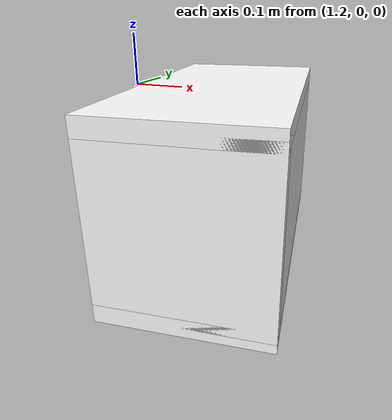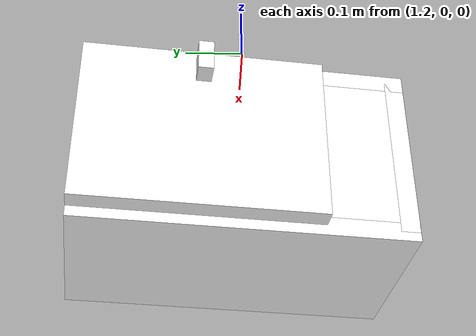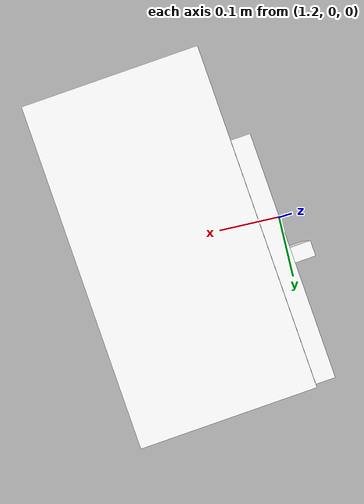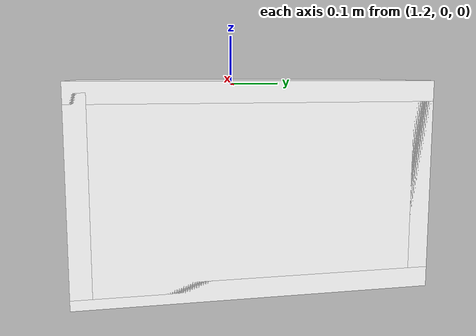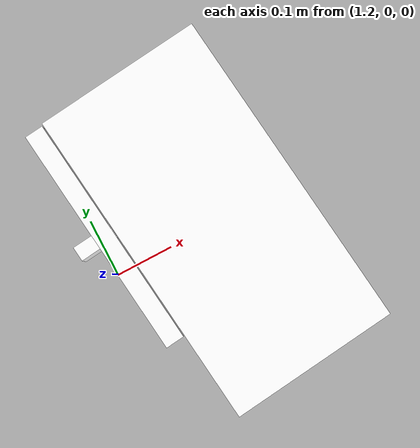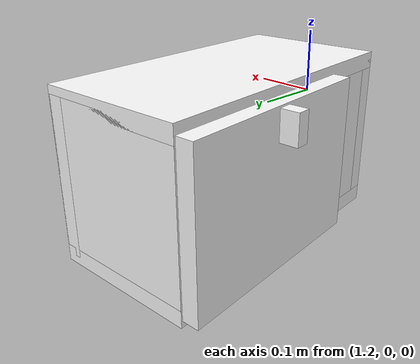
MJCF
<mujoco model="cabinet">
    <compiler angle="radian" eulerseq='zxy' />
    <option gravity = "0 0 0" />
    <option>
        <flag contact = "disable"/>
    </option>
    <statistic	extent="1.0" center="0.0 0.0 0.0"/>
    <visual>
        <map fogstart="3" fogend="5" force="0.1" znear=" 0.100000 " zfar=" 12.000000 "/>
    </visual>
    <size njmax="500" nconmax="100" />
    <actuator>
        <velocity joint="bottom_left_hinge" name="viva_revolution" kv='10'></velocity>
    </actuator>
    <asset>
        <texture builtin="flat" name="tabletex" height="32" width="32" rgb1="1 1 1" type="cube"></texture>
        <texture builtin="flat" name="objtex" height="32" width="32" rgb1="1 1 1" type="cube"></texture>
        <texture builtin="flat" name="handletex" height="32" width="32" rgb1="1 1 1" type="cube"></texture>
        <texture builtin="flat" name="wallpaper" height="32" width="32" rgb1="1 1 1" type="cube"></texture>
        <texture builtin="flat" name="kp" height="32" width="32" rgb1="1 1 1" type="cube"></texture>
        <material name="geomTable" shininess="0.03" specular="0.75" texture="tabletex"></material>
        <material name="geomObj" shininess="0.03" specular="0.75" texture="objtex"></material>
        <material name="geomHandle" shininess="0.03" specular="0.75" texture="handletex"></material>
        <material name="bg" shininess="0.03" specular="0.75" texture="wallpaper"></material>
        <material name="geomKeypad" shininess="0.03" specular="0.75" texture="kp"></material>
    </asset>
    <worldbody>
        <body name="cabinet_bottom" pos= " 1.386710 0.007954 -0.323120 "  quat= " -0.055568 0.000000 0.000000 0.998455" >
            <inertial pos="0 0 0" mass="1" diaginertia="1 1 1" />
            <geom size= " 0.151172 0.293720 0.016950 "  type="box" material="geomObj" name="b"/>
            <body name="cabinet_left" pos= " 0.000000 -0.276770 0.157974 " >
                <inertial pos="0 0 0" mass="1" diaginertia="1 1 1" />
                <geom size= " 0.151172 0.016950 0.157974 "  type="box" material="geomObj" name="c" />
            </body>
            <body name="cabinet_right" pos= " 0.000000 0.276770 0.157974 " >
                <inertial pos="0 0 0" mass="1" diaginertia="1 1 1" />
                <geom size= " 0.151172 0.016950 0.157974 "  type="box" material="geomObj" name="d" />
            </body>
            <body name="cabinet_top" pos= " 0.000000 0.000000 0.315948 " >
                <inertial pos="0 0 0" mass="1" diaginertia="1 1 1" />
                <geom size= " 0.151172 0.293720 0.016950 "  type="box" material="geomObj" name="e"/>
            </body>
            <body name="cabinet_back" pos= " -0.134222 0.000000 0.157974 "  >
                <inertial pos="0 0 0" mass="1" diaginertia="1 1 1" />
                <geom size= " 0.016950 0.293720 0.157974 "  type="box" material="geomObj" name="f" />
            </body>
            <body name="cabinet_keypad" pos= " 0.016950 0.212600 0.157974 " >
                <inertial pos="0 0 0" mass="1" diaginertia="1 1 1" />
                <geom size= " 0.134222 0.080120 0.141023 "  type="box" material="geomKeypad" name="keypizzlemynizzle" />
            </body>
            <body name="cabinet_left_hinge" pos= " 0.151172 -0.080120 0.000000 " >
                <inertial pos= " 0.020000 0.000000 0.157974 "  mass="1" diaginertia="1 1 1" />
                <joint name="bottom_left_hinge" type="hinge" pos="0 0 0" axis="0 1 0" limited="true" range= "0 2.3"  />
                <geom size= " 0.016950 0.213600 0.157974 "  pos= " 0.020000 0.000000 0.157974 "  type="box" material="geomObj" name="g"/>
                <body name="handle_link" pos= " 0.037793 0.000000 0.282047 " >
                    <inertial pos="0 0 0" mass="1" diaginertia="1 1 1" />
                    <geom size= " 0.035855 0.013289 0.029804 "  type="box" material="geomHandle" name="h"/>
                </body>
            </body>
        </body>
        <body name="external_camera_body_0" pos="0.0 0 0.00">
            <camera euler="-1.57 1.57 0.0" fovy=" 54.280851 " name="external_camera_0" pos="0.0 0 0"></camera>
            <inertial pos= " 0.00 0.0 0.000000 " mass="1" diaginertia="1 1 1" />
            <joint name="cam_j" pos="0.0 0 0" axis = "1 0 0" type="free" />
        </body>
    </worldbody>
</mujoco>
